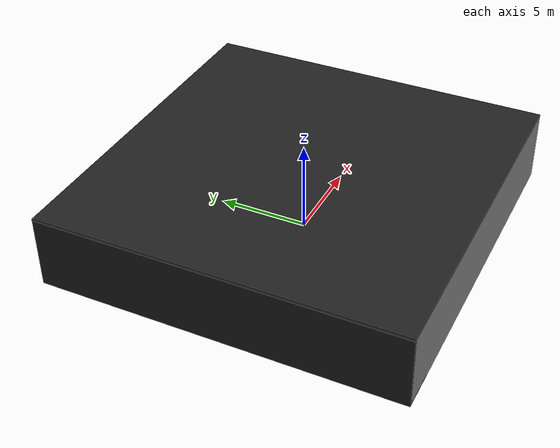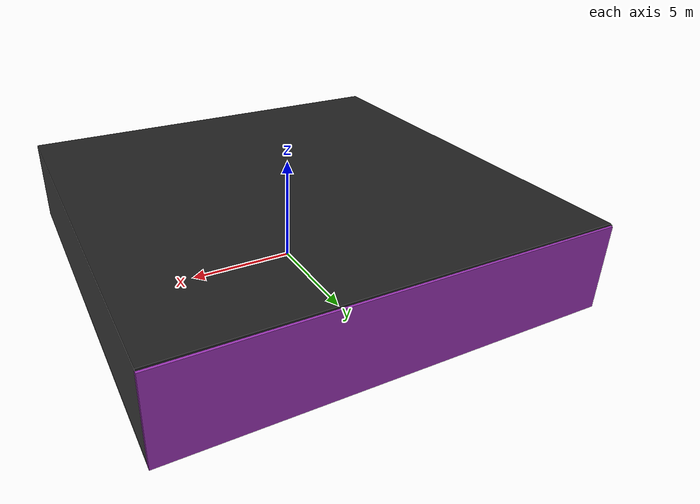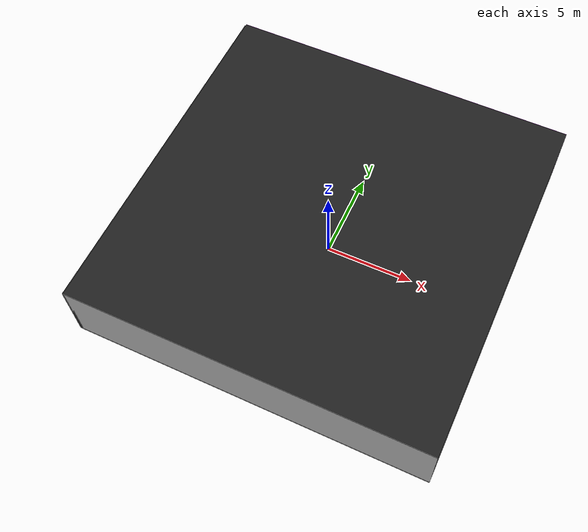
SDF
<sdf version="1.4">
 <world name="default">
  <physics type="ode">
   <max_step_size>0.001</max_step_size>
   <real_time_factor>1</real_time_factor>
   <real_time_update_rate>1000</real_time_update_rate>
   <gravity>0 0 -9.8</gravity>
  </physics>
  <scene><ambient>0.4 0.4 0.4 1</ambient><background>0.7 0.7 0.7 1</background><shadows>1</shadows></scene>
  <model name="Surrounding">
   <static>1</static>
   <link name="Ceiling">
    <collision name="Ceiling_Collision"><geometry><box><size>20 20 0.1</size></box></geometry></collision>
    <visual name="Ceiling_Visual">
     <geometry><box><size>20 20 0.1</size></box></geometry>
     <material>
      <script><uri>file://media/materials/scripts/gazebo.material</uri><name>Gazebo/Black</name></script>
     </material>
    </visual>
    <pose>0 0 4.05 0 0 0</pose>
   </link>
   <link name="Wall_South">
    <collision name="Wall_South_Collision">
     <geometry><box><size>20 0 4</size></box></geometry>
     <pose>0 0 2 0 -0 0</pose>
    </collision>
    <visual name="Wall_South_Visual">
     <pose>0 0 2 0 -0 0</pose>
     <geometry><box><size>20 0 4</size></box></geometry>
     <material>
      <script><uri>file://media/materials/scripts/gazebo.material</uri><name>Gazebo/JointAnchor</name></script>
     </material>
    </visual>
    <velocity_decay><linear>0</linear><angular>0</angular></velocity_decay>
    <pose>0 -10 0 0 -0 0</pose>
   </link>
   <link name="Wall_East">
    <collision name="Wall_21_Collision">
     <geometry><box><size>20 0 4</size></box></geometry>
     <pose>0 0 2 0 -0 0</pose>
    </collision>
    <visual name="Wall_21_Visual">
     <pose>0 0 2 0 -0 0</pose>
     <geometry><box><size>20 0 4</size></box></geometry>
     <material>
      <script><uri>file://media/materials/scripts/gazebo.material</uri><name>Gazebo/DarkGrey</name></script>
     </material>
    </visual>
    <velocity_decay><linear>0</linear><angular>0</angular></velocity_decay>
    <pose>10 0 0 0 -0 1.5708</pose>
   </link>
   <link name="Wall_North">
    <collision name="Wall_22_Collision">
     <geometry><box><size>20 0.2 4</size></box></geometry>
     <pose>0 0 2 0 -0 0</pose>
    </collision>
    <visual name="Wall_22_Visual">
     <pose>0 0 2 0 -0 0</pose>
     <geometry><box><size>20 0.2 4</size></box></geometry>
     <material>
      <script><uri>file://media/materials/scripts/gazebo.material</uri><name>Gazebo/PurpleGlow</name></script>
     </material>
    </visual>
    <velocity_decay><linear>0</linear><angular>0</angular></velocity_decay>
    <pose>0 10 0 0 -0 0</pose>
   </link>
   <link name="Wall_West">
    <collision name="Wall_23_Collision">
     <geometry><box><size>20 0.2 4</size></box></geometry>
     <pose>0 0 2 0 -0 0</pose>
    </collision>
    <visual name="Wall_23_Visual">
     <pose>0 0 2 0 -0 0</pose>
     <geometry><box><size>20 0.2 4</size></box></geometry>
     <material>
      <script><uri>file://media/materials/scripts/gazebo.material</uri><name>Gazebo/FlatBlack</name></script>
     </material>
    </visual>
    <velocity_decay><linear>0</linear><angular>0</angular></velocity_decay>
    <pose>-10 0 0 0 0 -1.5708</pose>
   </link>
   <link name="Ground_link">
    <collision name="collision">
     <pose>0 0 .05 0 -0 0</pose>
     <geometry><box><size>20 20 0.1</size></box></geometry>
    </collision>
    <visual name="visual">
     <pose>0 0 .05 0 -0 0</pose>
     <geometry><box><size>20 20 0.1</size></box></geometry>
     <material>
      <script><uri>file://media/materials/scripts/gazebo.material</uri><name>Gazebo/Grey</name></script>
     </material>
    </visual>
   </link>
   <static>1</static>
  </model>
  <spherical_coordinates>
   <surface_model>EARTH_WGS84</surface_model>
   <latitude_deg>0</latitude_deg>
   <longitude_deg>0</longitude_deg>
   <elevation>0</elevation>
   <heading_deg>0</heading_deg>
  </spherical_coordinates>
  <light name="lightball_0" type="diffuse">
   <diffuse>0.8 0.8 0.8 1</diffuse>
   <specular>0.2 0.2 0.2 1</specular>
   <attenuation>
    <range>100</range>
    <constant>0.7</constant>
    <linear>0.01</linear>
    <quadratic>0.001</quadratic>
   </attenuation>
   <direction>-0.5 0.1 -0.9</direction>
   <pose>1.71511660498 8.44275274705 1.09672815424 0 0 0</pose>
  </light>
  <light name="lightball_1" type="diffuse">
   <diffuse>0.8 0.8 0.8 1</diffuse>
   <specular>0.2 0.2 0.2 1</specular>
   <attenuation>
    <range>100</range>
    <constant>0.7</constant>
    <linear>0.01</linear>
    <quadratic>0.001</quadratic>
   </attenuation>
   <direction>-0.5 0.1 -0.9</direction>
   <pose>-5.31837734669 -0.592999119281 1.60464944825 0 0 0</pose>
  </light>
  <light name="lightball_2" type="diffuse">
   <diffuse>0.8 0.8 0.8 1</diffuse>
   <specular>0.2 0.2 0.2 1</specular>
   <attenuation>
    <range>100</range>
    <constant>0.7</constant>
    <linear>0.01</linear>
    <quadratic>0.001</quadratic>
   </attenuation>
   <direction>-0.5 0.1 -0.9</direction>
   <pose>-9.19576929849 5.49794233882 3.42793690923 0 0 0</pose>
  </light>
  <light name="lightball_3" type="diffuse">
   <diffuse>0.8 0.8 0.8 1</diffuse>
   <specular>0.2 0.2 0.2 1</specular>
   <attenuation>
    <range>100</range>
    <constant>0.7</constant>
    <linear>0.01</linear>
    <quadratic>0.001</quadratic>
   </attenuation>
   <direction>-0.5 0.1 -0.9</direction>
   <pose>7.82619040512 6.77237486056 1.65007117928 0 0 0</pose>
  </light>
  <light name="lightball_4" type="diffuse">
   <diffuse>0.8 0.8 0.8 1</diffuse>
   <specular>0.2 0.2 0.2 1</specular>
   <attenuation>
    <range>100</range>
    <constant>0.7</constant>
    <linear>0.01</linear>
    <quadratic>0.001</quadratic>
   </attenuation>
   <direction>-0.5 0.1 -0.9</direction>
   <pose>7.28974066681 3.64617405751 1.29396809466 0 0 0</pose>
  </light>
  <light name="lightball_5" type="diffuse">
   <diffuse>0.8 0.8 0.8 1</diffuse>
   <specular>0.2 0.2 0.2 1</specular>
   <attenuation>
    <range>100</range>
    <constant>0.7</constant>
    <linear>0.01</linear>
    <quadratic>0.001</quadratic>
   </attenuation>
   <direction>-0.5 0.1 -0.9</direction>
   <pose>1.74576243026 -4.81182926204 1.72781090005 0 0 0</pose>
  </light>
  <light name="lightball_6" type="diffuse">
   <diffuse>0.8 0.8 0.8 1</diffuse>
   <specular>0.2 0.2 0.2 1</specular>
   <attenuation>
    <range>100</range>
    <constant>0.7</constant>
    <linear>0.01</linear>
    <quadratic>0.001</quadratic>
   </attenuation>
   <direction>-0.5 0.1 -0.9</direction>
   <pose>-1.99723850065 -0.820631827189 0.769444112849 0 0 0</pose>
  </light>
  <include><uri>model://cabinet</uri><pose>-7.41659178075 -1.78225378584 0 0 0 2.03581906319</pose></include>
  <include>
   <uri>model://construction_cone</uri>
   <pose>-5.29362578281 1.83896961957 0 0 0 0.329581604746</pose>
  </include>
  <include>
   <uri>model://construction_cone</uri>
   <pose>4.51005165341 -7.79279590957 0 0 0 3.13061292755</pose>
  </include>
  <include>
   <uri>model://robocup_3Dsim_goal</uri>
   <pose>3.73417870093 1.60003090245 0 0 0 0.911404472119</pose>
  </include>
  <include><uri>model://cabinet</uri><pose>8.29449744588 -6.94233855268 0 0 0 1.72605814334</pose></include>
 </world>
</sdf>

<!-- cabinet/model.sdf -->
<sdf version="1.5">
  <model name="cabinet">
    <static>true</static>
    <link name="cabinet_bottom_plate">
      <inertial>
        <pose>0 0 -1 0 0 0</pose>
        <inertia>
          <ixx>2.050000</ixx>
          <ixy>0</ixy>
          <ixz>0</ixz>
          <iyy>2.050000</iyy>
          <iyz>0</iyz>
          <izz>2.050000</izz>
        </inertia>
        <mass>25.000000</mass>
      </inertial>
      <collision name="cabinet_bottom_plate_geom">
        <pose>0 0 0.010000 0 0 0</pose>
        <geometry>
          <box>
            <size>0.450000 0.450000 0.020000</size>
          </box>
        </geometry>
      </collision>
      <visual name="cabinet_bottom_plate_geom_visual">
        <pose>0 0 0.010000 0 0 0</pose>
        <geometry>
          <box>
            <size>0.450000 0.450000 0.020000</size>
          </box>
        </geometry>
        <material>
          <script>
            <uri>model://media/materials/scripts/gazebo.material</uri>
            <name>Gazebo/Wood</name>
          </script>
        </material>
      </visual>
      <collision name="cabinet_bottom_plate_geom_cabinet_back_plate">
        <pose>0.235000 0 0.510000 0 0 0</pose>
        <geometry>
          <box>
            <size>0.020000 0.450000 1.020000</size>
          </box>
        </geometry>
      </collision>
      <visual name="cabinet_bottom_plate_geom_cabinet_back_plate_visual">
        <pose>0.235000 0 0.510000 0 0 0</pose>
        <geometry>
          <box>
            <size>0.020000 0.450000 1.020000</size>
          </box>
        </geometry>
        <material>
          <script>
            <uri>model://media/materials/scripts/gazebo.material</uri>
            <name>Gazebo/Wood</name>
          </script>
        </material>
      </visual>
      <collision name="cabinet_bottom_plate_geom_cabinet_left_plate">
        <pose>0 0.235000 0.510000 0 0 0</pose>
        <geometry>
          <box>
            <size>0.450000 0.020000 1.020000</size>
          </box>
        </geometry>
      </collision>
      <visual name="cabinet_bottom_plate_geom_cabinet_left_plate_visual">
        <pose>0 0.235000 0.510000 0 0 0</pose>
        <geometry>
          <box>
            <size>0.450000 0.020000 1.020000</size>
          </box>
        </geometry>
        <material>
          <script>
            <uri>model://media/materials/scripts/gazebo.material</uri>
            <name>Gazebo/Wood</name>
          </script>
        </material>
      </visual>
      <collision name="cabinet_bottom_plate_geom_cabinet_middle_plate">
        <pose>0 0 0.510000 0 0 0</pose>
        <geometry>
          <box>
            <size>0.450000 0.450000 0.020000</size>
          </box>
        </geometry>
      </collision>
      <visual name="cabinet_bottom_plate_geom_cabinet_middle_plate_visual">
        <pose>0 0 0.510000 0 0 0</pose>
        <geometry>
          <box>
            <size>0.450000 0.450000 0.020000</size>
          </box>
        </geometry>
        <material>
          <script>
            <uri>model://media/materials/scripts/gazebo.material</uri>
            <name>Gazebo/Wood</name>
          </script>
        </material>
      </visual>
      <collision name="cabinet_bottom_plate_geom_cabinet_right_plate">
        <pose>0 -0.235000 0.510000 0 0 0</pose>
        <geometry>
          <box>
            <size>0.450000 0.020000 1.020000</size>
          </box>
        </geometry>
      </collision>
      <visual name="cabinet_bottom_plate_geom_cabinet_right_plate_visual">
        <pose>0 -0.235000 0.510000 0 0 0</pose>
        <geometry>
          <box>
            <size>0.450000 0.020000 1.020000</size>
          </box>
        </geometry>
        <material>
          <script>
            <uri>model://media/materials/scripts/gazebo.material</uri>
            <name>Gazebo/Wood</name>
          </script>
        </material>
      </visual>
      <collision name="cabinet_bottom_plate_geom_cabinet_top_plate">
        <pose>0 0 1.010000 0 0 0</pose>
        <geometry>
          <box>
            <size>0.450000 0.450000 0.020000</size>
          </box>
        </geometry>
      </collision>
      <visual name="cabinet_bottom_plate_geom_cabinet_top_plate_visual">
        <pose>0 0 1.010000 0 0 0</pose>
        <geometry>
          <box>
            <size>0.450000 0.450000 0.020000</size>
          </box>
        </geometry>
        <material>
          <script>
            <uri>model://media/materials/scripts/gazebo.material</uri>
            <name>Gazebo/Wood</name>
          </script>
        </material>
      </visual>
    </link>
  </model>
</sdf>

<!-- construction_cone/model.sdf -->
<sdf version="1.5">
  <model name="Construction Cone">
    <link name="link">
      <collision name="collision">
        <geometry>
          <mesh>
            <scale>10 10 10</scale>
            <uri>file://isr-testbed/construction_cone/meshes/construction_cone.dae</uri>
          </mesh>
        </geometry>
      </collision>
      <visual name="visual">
        <geometry>
          <mesh>
            <scale>10 10 10</scale>
            <uri>file://isr-testbed/construction_cone/meshes/construction_cone.dae</uri>
          </mesh>
        </geometry>
      </visual>
    </link>
  </model>
</sdf>

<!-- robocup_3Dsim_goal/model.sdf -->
<sdf version="1.5">
  <model name="robocup_3d_goal">
    <static>true</static>
    <link name="left_post">
      <pose>0 1.05 0.45 0 0 0</pose>
      <collision name="collision">
        <geometry>
          <cylinder>
            <radius>0.05</radius>
            <length>0.9</length>
          </cylinder>
        </geometry>
      </collision>
      <visual name="visual">
        <geometry>
          <cylinder>
            <radius>0.05</radius>
            <length>0.9</length>
          </cylinder>
        </geometry>
        <material>
          <script>
            <uri>file://media/materials/scripts/gazebo.material</uri>
            <name>Gazebo/ZincYellow</name>
          </script>
        </material>
      </visual>
    </link>
    <link name="left_support_horiz_lower">
      <pose>0.30 1.05 0.01 0 0 0</pose>
      <collision name="collision">
        <geometry>
          <box>
            <size>0.50 0.02 0.02</size>
          </box>
        </geometry>
      </collision>
      <visual name="visual">
        <geometry>
          <box>
            <size>0.50 0.02 0.02</size>
          </box>
        </geometry>
        <material>
          <script>
            <uri>file://media/materials/scripts/gazebo.material</uri>
            <name>Gazebo/White</name>
          </script>
        </material>
      </visual>
    </link>
    <link name="left_support_horiz_upper">
      <pose>0.30 1.05 0.79 0 0 0</pose>
      <collision name="collision">
        <geometry>
          <box>
            <size>0.50 0.02 0.02</size>
          </box>
        </geometry>
      </collision>
      <visual name="visual">
        <geometry>
          <box>
            <size>0.50 0.02 0.02</size>
          </box>
        </geometry>
        <material>
          <script>
            <uri>file://media/materials/scripts/gazebo.material</uri>
            <name>Gazebo/White</name>
          </script>
        </material>
      </visual>
    </link>
    <link name="left_support_vertical">
      <pose>0.56 1.05 0.4 0 1.5708 0</pose>
      <collision name="collision">
        <geometry>
          <box>
            <size>0.80 0.02 0.02</size>
          </box>
        </geometry>
      </collision>
      <visual name="visual">
        <geometry>
          <box>
            <size>0.80 0.02 0.02</size>
          </box>
        </geometry>
        <material>
          <script>
            <uri>file://media/materials/scripts/gazebo.material</uri>
            <name>Gazebo/White</name>
          </script>
        </material>
      </visual>
    </link>
    <link name="right_support_horiz_lower">
      <pose>0.30 -1.05 0.01 0 0 0</pose>
      <collision name="collision">
        <geometry>
          <box>
            <size>0.50 0.02 0.02</size>
          </box>
        </geometry>
      </collision>
      <visual name="visual">
        <geometry>
          <box>
            <size>0.50 0.02 0.02</size>
          </box>
        </geometry>
        <material>
          <script>
            <uri>file://media/materials/scripts/gazebo.material</uri>
            <name>Gazebo/White</name>
          </script>
        </material>
      </visual>
    </link>
    <link name="right_support_horiz_upper">
      <pose>0.30 -1.05 0.79 0 0 0</pose>
      <collision name="collision">
        <geometry>
          <box>
            <size>0.50 0.02 0.02</size>
          </box>
        </geometry>
      </collision>
      <visual name="visual">
        <geometry>
          <box>
            <size>0.50 0.02 0.02</size>
          </box>
        </geometry>
        <material>
          <script>
            <uri>file://media/materials/scripts/gazebo.material</uri>
            <name>Gazebo/White</name>
          </script>
        </material>
      </visual>
    </link>
    <link name="right_support_vertical">
      <pose>0.56 -1.05 0.4 0 1.5708 0</pose>
      <collision name="collision">
        <geometry>
          <box>
            <size>0.80 0.02 0.02</size>
          </box>
        </geometry>
      </collision>
      <visual name="visual">
        <geometry>
          <box>
            <size>0.80 0.02 0.02</size>
          </box>
        </geometry>
        <material>
          <script>
            <uri>file://media/materials/scripts/gazebo.material</uri>
            <name>Gazebo/White</name>
          </script>
        </material>
      </visual>
    </link>
    <link name="center_support_horiz_lower">
      <pose>0.56 0 0.01 0 1.5708 0</pose>
      <collision name="collision">
        <geometry>
          <box>
            <size>0.02 2.08 0.02</size>
          </box>
        </geometry>
      </collision>
      <visual name="visual">
        <geometry>
          <box>
            <size>0.02 2.08 0.02</size>
          </box>
        </geometry>
        <material>
          <script>
            <uri>file://media/materials/scripts/gazebo.material</uri>
            <name>Gazebo/White</name>
          </script>
        </material>
      </visual>
    </link>
    <link name="center_support_horiz_upper">
      <pose>0.56 0 0.79 0 1.5708 0</pose>
      <collision name="collision">
        <geometry>
          <box>
            <size>0.02 2.08 0.02</size>
          </box>
        </geometry>
      </collision>
      <visual name="visual">
        <geometry>
          <box>
            <size>0.02 2.08 0.02</size>
          </box>
        </geometry>
        <material>
          <script>
            <uri>file://media/materials/scripts/gazebo.material</uri>
            <name>Gazebo/White</name>
          </script>
        </material>
      </visual>
    </link>
    <link name="right_post">
      <pose>0 -1.05 0.45 0 0 0</pose>
      <collision name="collision">
        <geometry>
          <cylinder>
            <radius>0.05</radius>
            <length>0.9</length>
          </cylinder>
        </geometry>
      </collision>
      <visual name="visual">
        <geometry>
          <cylinder>
            <radius>0.05</radius>
            <length>0.9</length>
          </cylinder>
        </geometry>
        <material>
          <script>
            <uri>file://media/materials/scripts/gazebo.material</uri>
            <name>Gazebo/ZincYellow</name>
          </script>
        </material>
      </visual>
    </link>
    <link name="crossbar">
      <pose>0 0 0.85 1.57 1.57 0</pose>
      <collision name="collision">
        <geometry>
          <cylinder>
            <radius>0.05</radius>
            <length>2.0</length>
          </cylinder>
        </geometry>
      </collision>
      <visual name="visual">
        <geometry>
          <cylinder>
            <radius>0.05</radius>
            <length>2.0</length>
          </cylinder>
        </geometry>
        <material>
          <script>
            <uri>file://media/materials/scripts/gazebo.material</uri>
            <name>Gazebo/ZincYellow</name>
          </script>
        </material>
      </visual>
    </link>
    <link name="center_net">
      <pose>0.56 0 0.40 0 0 0</pose>
      <collision name="collision">
        <geometry>
          <box>
            <size>0.01 2.1 0.80</size>
          </box>
        </geometry>
      </collision>
      <visual name="visual">
        <geometry>
          <box>
            <size>0.01 2.1 0.80</size>
          </box>
        </geometry>
        <material>
          <script>
            <uri>model://../model_source/models/robocup09_spl_field/materials/scripts/</uri>
            <uri>model://../model_source/models/robocup09_spl_field/materials/textures/</uri>
            <name>RoboCup/Net</name>
          </script>
        </material>
      </visual>
    </link>
    <link name="left_net">
      <pose>0.30 1.05 0.40 0 0 0</pose>
      <collision name="collision">
        <geometry>
          <box>
            <size>0.50 0.01 0.76</size>
          </box>
        </geometry>
      </collision>
      <visual name="visual">
        <geometry>
          <box>
            <size>0.50 0.01 0.76</size>
          </box>
        </geometry>
        <material>
          <script>
            <uri>model://../model_source/models/robocup09_spl_field/materials/scripts/</uri>
            <uri>model://../model_source/models/robocup09_spl_field/materials/textures/</uri>
            <name>RoboCup/Net</name>
          </script>
        </material>
      </visual>
    </link>
    <link name="right_net">
      <pose>0.30 -1.05 0.40 0 0 0</pose>
      <collision name="collision">
        <geometry>
          <box>
            <size>0.50 0.01 0.76</size>
          </box>
        </geometry>
      </collision>
      <visual name="visual">
        <geometry>
          <box>
            <size>0.50 0.01 0.76</size>
          </box>
        </geometry>
        <material>
          <script>
            <uri>model://../model_source/models/robocup09_spl_field/materials/scripts/</uri>
            <uri>model://../model_source/models/robocup09_spl_field/materials/textures/</uri>
            <name>RoboCup/Net</name>
          </script>
        </material>
      </visual>
    </link>
  </model>
</sdf>
